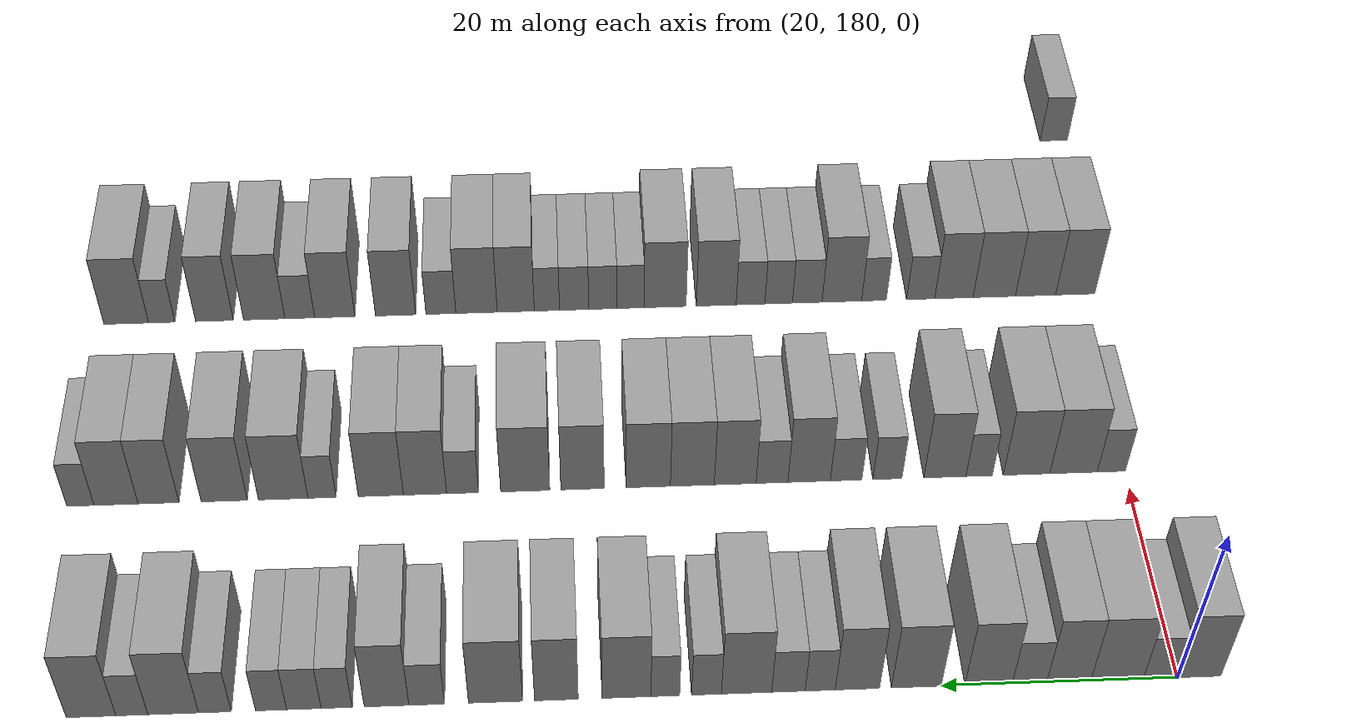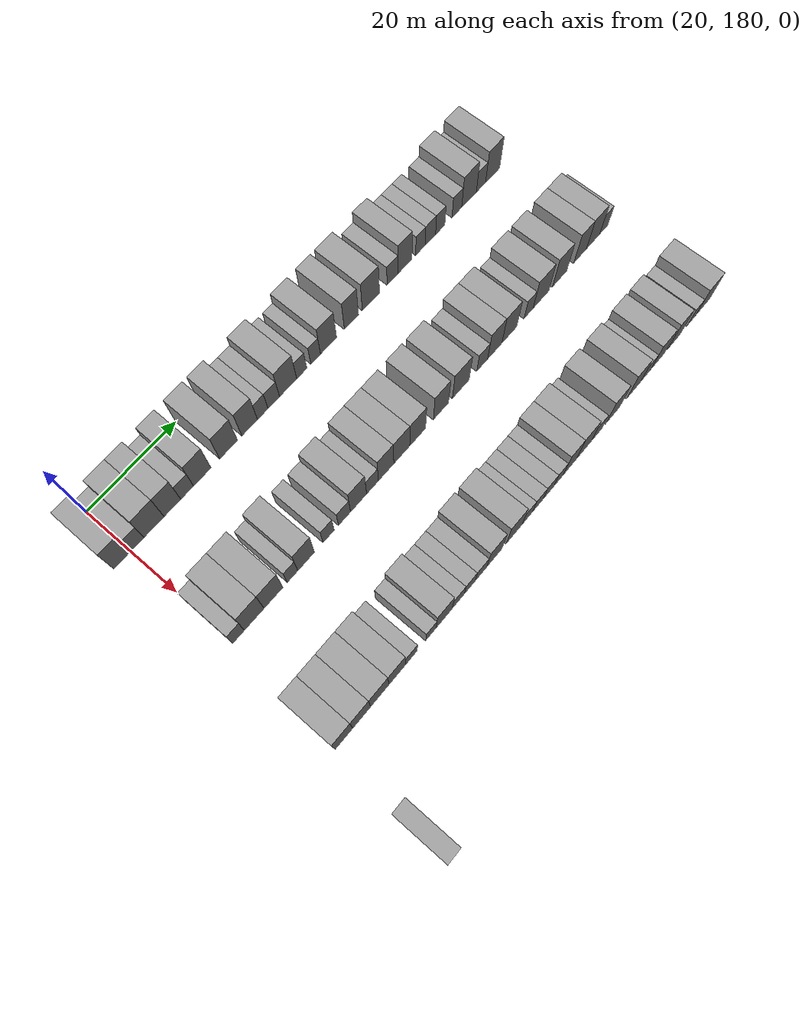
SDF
<sdf version="1.6">
 <world name="default">
  <model name="building_133">
   <static>1</static>
   <pose>25.0000 178.1787 0 0.000000 0.000000 0.000000</pose>
   <link name="link">
    <pose>0 0 4.50 0 0 0</pose>
    <collision name="collision"><geometry><box><size>10.0000 3.6230 9.0000</size></box></geometry></collision>
    <visual name="visual">
     <cast_shadows>0</cast_shadows>
     <geometry><box><size>10.0000 3.6230 9.0000</size></box></geometry>
     <material>
      <script>
       <uri>model://grey_wall/materials/scripts</uri>
       <uri>model://grey_wall/materials/textures</uri>
       <name>vrc/grey_wall</name>
      </script>
     </material>
    </visual>
   </link>
  </model>
  <model name="building_134">
   <static>1</static>
   <pose>25.0000 181.4666 0 0.000000 0.000000 0.000000</pose>
   <link name="link">
    <pose>0 0 3.00 0 0 0</pose>
    <collision name="collision"><geometry><box><size>10.0000 2.9526 6.0000</size></box></geometry></collision>
    <visual name="visual">
     <cast_shadows>0</cast_shadows>
     <geometry><box><size>10.0000 2.9526 6.0000</size></box></geometry>
     <material>
      <script>
       <uri>model://grey_wall/materials/scripts</uri>
       <uri>model://grey_wall/materials/textures</uri>
       <name>vrc/grey_wall</name>
      </script>
     </material>
    </visual>
   </link>
  </model>
  <model name="building_135">
   <static>1</static>
   <pose>25.0000 185.1688 0 0.000000 0.000000 0.000000</pose>
   <link name="link">
    <pose>0 0 4.50 0 0 0</pose>
    <collision name="collision"><geometry><box><size>10.0000 4.4518 9.0000</size></box></geometry></collision>
    <visual name="visual">
     <cast_shadows>0</cast_shadows>
     <geometry><box><size>10.0000 4.4518 9.0000</size></box></geometry>
     <material>
      <script>
       <uri>model://grey_wall/materials/scripts</uri>
       <uri>model://grey_wall/materials/textures</uri>
       <name>vrc/grey_wall</name>
      </script>
     </material>
    </visual>
   </link>
  </model>
  <model name="building_136">
   <static>1</static>
   <pose>25.0000 189.2593 0 0.000000 0.000000 0.000000</pose>
   <link name="link">
    <pose>0 0 4.50 0 0 0</pose>
    <collision name="collision"><geometry><box><size>10.0000 3.7293 9.0000</size></box></geometry></collision>
    <visual name="visual">
     <cast_shadows>0</cast_shadows>
     <geometry><box><size>10.0000 3.7293 9.0000</size></box></geometry>
     <material>
      <script>
       <uri>model://grey_wall/materials/scripts</uri>
       <uri>model://grey_wall/materials/textures</uri>
       <name>vrc/grey_wall</name>
      </script>
     </material>
    </visual>
   </link>
  </model>
  <model name="building_137">
   <static>1</static>
   <pose>25.0000 192.5766 0 0.000000 0.000000 0.000000</pose>
   <link name="link">
    <pose>0 0 3.00 0 0 0</pose>
    <collision name="collision"><geometry><box><size>10.0000 2.9053 6.0000</size></box></geometry></collision>
    <visual name="visual">
     <cast_shadows>0</cast_shadows>
     <geometry><box><size>10.0000 2.9053 6.0000</size></box></geometry>
     <material>
      <script>
       <uri>model://grey_wall/materials/scripts</uri>
       <uri>model://grey_wall/materials/textures</uri>
       <name>vrc/grey_wall</name>
      </script>
     </material>
    </visual>
   </link>
  </model>
  <model name="building_138">
   <static>1</static>
   <pose>25.0000 196.0271 0 0.000000 0.000000 0.000000</pose>
   <link name="link">
    <pose>0 0 4.50 0 0 0</pose>
    <collision name="collision"><geometry><box><size>10.0000 3.9957 9.0000</size></box></geometry></collision>
    <visual name="visual">
     <cast_shadows>0</cast_shadows>
     <geometry><box><size>10.0000 3.9957 9.0000</size></box></geometry>
     <material>
      <script>
       <uri>model://grey_wall/materials/scripts</uri>
       <uri>model://grey_wall/materials/textures</uri>
       <name>vrc/grey_wall</name>
      </script>
     </material>
    </visual>
   </link>
  </model>
  <model name="building_139">
   <static>1</static>
   <pose>25.0000 202.1184 0 0.000000 0.000000 0.000000</pose>
   <link name="link">
    <pose>0 0 4.50 0 0 0</pose>
    <collision name="collision"><geometry><box><size>10.0000 4.1868 9.0000</size></box></geometry></collision>
    <visual name="visual">
     <cast_shadows>0</cast_shadows>
     <geometry><box><size>10.0000 4.1868 9.0000</size></box></geometry>
     <material>
      <script>
       <uri>model://grey_wall/materials/scripts</uri>
       <uri>model://grey_wall/materials/textures</uri>
       <name>vrc/grey_wall</name>
      </script>
     </material>
    </visual>
   </link>
  </model>
  <model name="building_140">
   <static>1</static>
   <pose>25.0000 207.0760 0 0.000000 0.000000 0.000000</pose>
   <link name="link">
    <pose>0 0 4.50 0 0 0</pose>
    <collision name="collision"><geometry><box><size>10.0000 3.7285 9.0000</size></box></geometry></collision>
    <visual name="visual">
     <cast_shadows>0</cast_shadows>
     <geometry><box><size>10.0000 3.7285 9.0000</size></box></geometry>
     <material>
      <script>
       <uri>model://grey_wall/materials/scripts</uri>
       <uri>model://grey_wall/materials/textures</uri>
       <name>vrc/grey_wall</name>
      </script>
     </material>
    </visual>
   </link>
  </model>
  <model name="building_141">
   <static>1</static>
   <pose>25.0000 210.2023 0 0.000000 0.000000 0.000000</pose>
   <link name="link">
    <pose>0 0 3.00 0 0 0</pose>
    <collision name="collision"><geometry><box><size>10.0000 2.5241 6.0000</size></box></geometry></collision>
    <visual name="visual">
     <cast_shadows>0</cast_shadows>
     <geometry><box><size>10.0000 2.5241 6.0000</size></box></geometry>
     <material>
      <script>
       <uri>model://grey_wall/materials/scripts</uri>
       <uri>model://grey_wall/materials/textures</uri>
       <name>vrc/grey_wall</name>
      </script>
     </material>
    </visual>
   </link>
  </model>
  <model name="building_142">
   <static>1</static>
   <pose>25.0000 212.8677 0 0.000000 0.000000 0.000000</pose>
   <link name="link">
    <pose>0 0 3.00 0 0 0</pose>
    <collision name="collision"><geometry><box><size>10.0000 2.8066 6.0000</size></box></geometry></collision>
    <visual name="visual">
     <cast_shadows>0</cast_shadows>
     <geometry><box><size>10.0000 2.8066 6.0000</size></box></geometry>
     <material>
      <script>
       <uri>model://grey_wall/materials/scripts</uri>
       <uri>model://grey_wall/materials/textures</uri>
       <name>vrc/grey_wall</name>
      </script>
     </material>
    </visual>
   </link>
  </model>
  <model name="building_143">
   <static>1</static>
   <pose>25.0000 216.3794 0 0.000000 0.000000 0.000000</pose>
   <link name="link">
    <pose>0 0 4.50 0 0 0</pose>
    <collision name="collision"><geometry><box><size>10.0000 4.2169 9.0000</size></box></geometry></collision>
    <visual name="visual">
     <cast_shadows>0</cast_shadows>
     <geometry><box><size>10.0000 4.2169 9.0000</size></box></geometry>
     <material>
      <script>
       <uri>model://grey_wall/materials/scripts</uri>
       <uri>model://grey_wall/materials/textures</uri>
       <name>vrc/grey_wall</name>
      </script>
     </material>
    </visual>
   </link>
  </model>
  <model name="building_144">
   <static>1</static>
   <pose>25.0000 219.7344 0 0.000000 0.000000 0.000000</pose>
   <link name="link">
    <pose>0 0 3.00 0 0 0</pose>
    <collision name="collision"><geometry><box><size>10.0000 2.4931 6.0000</size></box></geometry></collision>
    <visual name="visual">
     <cast_shadows>0</cast_shadows>
     <geometry><box><size>10.0000 2.4931 6.0000</size></box></geometry>
     <material>
      <script>
       <uri>model://grey_wall/materials/scripts</uri>
       <uri>model://grey_wall/materials/textures</uri>
       <name>vrc/grey_wall</name>
      </script>
     </material>
    </visual>
   </link>
  </model>
  <model name="building_145">
   <static>1</static>
   <pose>25.0000 223.1831 0 0.000000 0.000000 0.000000</pose>
   <link name="link">
    <pose>0 0 3.00 0 0 0</pose>
    <collision name="collision"><geometry><box><size>10.0000 2.4042 6.0000</size></box></geometry></collision>
    <visual name="visual">
     <cast_shadows>0</cast_shadows>
     <geometry><box><size>10.0000 2.4042 6.0000</size></box></geometry>
     <material>
      <script>
       <uri>model://grey_wall/materials/scripts</uri>
       <uri>model://grey_wall/materials/textures</uri>
       <name>vrc/grey_wall</name>
      </script>
     </material>
    </visual>
   </link>
  </model>
  <model name="building_146">
   <static>1</static>
   <pose>25.0000 226.4195 0 0.000000 0.000000 0.000000</pose>
   <link name="link">
    <pose>0 0 4.50 0 0 0</pose>
    <collision name="collision"><geometry><box><size>10.0000 4.0685 9.0000</size></box></geometry></collision>
    <visual name="visual">
     <cast_shadows>0</cast_shadows>
     <geometry><box><size>10.0000 4.0685 9.0000</size></box></geometry>
     <material>
      <script>
       <uri>model://grey_wall/materials/scripts</uri>
       <uri>model://grey_wall/materials/textures</uri>
       <name>vrc/grey_wall</name>
      </script>
     </material>
    </visual>
   </link>
  </model>
  <model name="building_147">
   <static>1</static>
   <pose>25.0000 232.2710 0 0.000000 0.000000 0.000000</pose>
   <link name="link">
    <pose>0 0 4.50 0 0 0</pose>
    <collision name="collision"><geometry><box><size>10.0000 3.6345 9.0000</size></box></geometry></collision>
    <visual name="visual">
     <cast_shadows>0</cast_shadows>
     <geometry><box><size>10.0000 3.6345 9.0000</size></box></geometry>
     <material>
      <script>
       <uri>model://grey_wall/materials/scripts</uri>
       <uri>model://grey_wall/materials/textures</uri>
       <name>vrc/grey_wall</name>
      </script>
     </material>
    </visual>
   </link>
  </model>
  <model name="building_148">
   <static>1</static>
   <pose>25.0000 237.3366 0 0.000000 0.000000 0.000000</pose>
   <link name="link">
    <pose>0 0 4.50 0 0 0</pose>
    <collision name="collision"><geometry><box><size>10.0000 4.4966 9.0000</size></box></geometry></collision>
    <visual name="visual">
     <cast_shadows>0</cast_shadows>
     <geometry><box><size>10.0000 4.4966 9.0000</size></box></geometry>
     <material>
      <script>
       <uri>model://grey_wall/materials/scripts</uri>
       <uri>model://grey_wall/materials/textures</uri>
       <name>vrc/grey_wall</name>
      </script>
     </material>
    </visual>
   </link>
  </model>
  <model name="building_149">
   <static>1</static>
   <pose>25.0000 243.0659 0 0.000000 0.000000 0.000000</pose>
   <link name="link">
    <pose>0 0 3.00 0 0 0</pose>
    <collision name="collision"><geometry><box><size>10.0000 2.9619 6.0000</size></box></geometry></collision>
    <visual name="visual">
     <cast_shadows>0</cast_shadows>
     <geometry><box><size>10.0000 2.9619 6.0000</size></box></geometry>
     <material>
      <script>
       <uri>model://grey_wall/materials/scripts</uri>
       <uri>model://grey_wall/materials/textures</uri>
       <name>vrc/grey_wall</name>
      </script>
     </material>
    </visual>
   </link>
  </model>
  <model name="building_150">
   <static>1</static>
   <pose>25.0000 246.3970 0 0.000000 0.000000 0.000000</pose>
   <link name="link">
    <pose>0 0 4.50 0 0 0</pose>
    <collision name="collision"><geometry><box><size>10.0000 3.7003 9.0000</size></box></geometry></collision>
    <visual name="visual">
     <cast_shadows>0</cast_shadows>
     <geometry><box><size>10.0000 3.7003 9.0000</size></box></geometry>
     <material>
      <script>
       <uri>model://grey_wall/materials/scripts</uri>
       <uri>model://grey_wall/materials/textures</uri>
       <name>vrc/grey_wall</name>
      </script>
     </material>
    </visual>
   </link>
  </model>
  <model name="building_151">
   <static>1</static>
   <pose>25.0000 250.5377 0 0.000000 0.000000 0.000000</pose>
   <link name="link">
    <pose>0 0 3.00 0 0 0</pose>
    <collision name="collision"><geometry><box><size>10.0000 2.5811 6.0000</size></box></geometry></collision>
    <visual name="visual">
     <cast_shadows>0</cast_shadows>
     <geometry><box><size>10.0000 2.5811 6.0000</size></box></geometry>
     <material>
      <script>
       <uri>model://grey_wall/materials/scripts</uri>
       <uri>model://grey_wall/materials/textures</uri>
       <name>vrc/grey_wall</name>
      </script>
     </material>
    </visual>
   </link>
  </model>
  <model name="building_152">
   <static>1</static>
   <pose>25.0000 253.2585 0 0.000000 0.000000 0.000000</pose>
   <link name="link">
    <pose>0 0 3.00 0 0 0</pose>
    <collision name="collision"><geometry><box><size>10.0000 2.8606 6.0000</size></box></geometry></collision>
    <visual name="visual">
     <cast_shadows>0</cast_shadows>
     <geometry><box><size>10.0000 2.8606 6.0000</size></box></geometry>
     <material>
      <script>
       <uri>model://grey_wall/materials/scripts</uri>
       <uri>model://grey_wall/materials/textures</uri>
       <name>vrc/grey_wall</name>
      </script>
     </material>
    </visual>
   </link>
  </model>
  <model name="building_153">
   <static>1</static>
   <pose>25.0000 255.9757 0 0.000000 0.000000 0.000000</pose>
   <link name="link">
    <pose>0 0 3.00 0 0 0</pose>
    <collision name="collision"><geometry><box><size>10.0000 2.5737 6.0000</size></box></geometry></collision>
    <visual name="visual">
     <cast_shadows>0</cast_shadows>
     <geometry><box><size>10.0000 2.5737 6.0000</size></box></geometry>
     <material>
      <script>
       <uri>model://grey_wall/materials/scripts</uri>
       <uri>model://grey_wall/materials/textures</uri>
       <name>vrc/grey_wall</name>
      </script>
     </material>
    </visual>
   </link>
  </model>
  <model name="building_154">
   <static>1</static>
   <pose>25.0000 260.6151 0 0.000000 0.000000 0.000000</pose>
   <link name="link">
    <pose>0 0 3.00 0 0 0</pose>
    <collision name="collision"><geometry><box><size>10.0000 2.7052 6.0000</size></box></geometry></collision>
    <visual name="visual">
     <cast_shadows>0</cast_shadows>
     <geometry><box><size>10.0000 2.7052 6.0000</size></box></geometry>
     <material>
      <script>
       <uri>model://grey_wall/materials/scripts</uri>
       <uri>model://grey_wall/materials/textures</uri>
       <name>vrc/grey_wall</name>
      </script>
     </material>
    </visual>
   </link>
  </model>
  <model name="building_155">
   <static>1</static>
   <pose>25.0000 264.0558 0 0.000000 0.000000 0.000000</pose>
   <link name="link">
    <pose>0 0 4.50 0 0 0</pose>
    <collision name="collision"><geometry><box><size>10.0000 4.1763 9.0000</size></box></geometry></collision>
    <visual name="visual">
     <cast_shadows>0</cast_shadows>
     <geometry><box><size>10.0000 4.1763 9.0000</size></box></geometry>
     <material>
      <script>
       <uri>model://grey_wall/materials/scripts</uri>
       <uri>model://grey_wall/materials/textures</uri>
       <name>vrc/grey_wall</name>
      </script>
     </material>
    </visual>
   </link>
  </model>
  <model name="building_156">
   <static>1</static>
   <pose>25.0000 267.4645 0 0.000000 0.000000 0.000000</pose>
   <link name="link">
    <pose>0 0 3.00 0 0 0</pose>
    <collision name="collision"><geometry><box><size>10.0000 2.6411 6.0000</size></box></geometry></collision>
    <visual name="visual">
     <cast_shadows>0</cast_shadows>
     <geometry><box><size>10.0000 2.6411 6.0000</size></box></geometry>
     <material>
      <script>
       <uri>model://grey_wall/materials/scripts</uri>
       <uri>model://grey_wall/materials/textures</uri>
       <name>vrc/grey_wall</name>
      </script>
     </material>
    </visual>
   </link>
  </model>
  <model name="building_157">
   <static>1</static>
   <pose>25.0000 270.8281 0 0.000000 0.000000 0.000000</pose>
   <link name="link">
    <pose>0 0 4.50 0 0 0</pose>
    <collision name="collision"><geometry><box><size>10.0000 4.0861 9.0000</size></box></geometry></collision>
    <visual name="visual">
     <cast_shadows>0</cast_shadows>
     <geometry><box><size>10.0000 4.0861 9.0000</size></box></geometry>
     <material>
      <script>
       <uri>model://grey_wall/materials/scripts</uri>
       <uri>model://grey_wall/materials/textures</uri>
       <name>vrc/grey_wall</name>
      </script>
     </material>
    </visual>
   </link>
  </model>
  <model name="building_326">
   <static>1</static>
   <pose>47.0000 181.2632 0 0.000000 0.000000 0.000000</pose>
   <link name="link">
    <pose>0 0 3.00 0 0 0</pose>
    <collision name="collision"><geometry><box><size>10.0000 2.5827 6.0000</size></box></geometry></collision>
    <visual name="visual">
     <cast_shadows>0</cast_shadows>
     <geometry><box><size>10.0000 2.5827 6.0000</size></box></geometry>
     <material>
      <script>
       <uri>model://grey_wall/materials/scripts</uri>
       <uri>model://grey_wall/materials/textures</uri>
       <name>vrc/grey_wall</name>
      </script>
     </material>
    </visual>
   </link>
  </model>
  <model name="building_327">
   <static>1</static>
   <pose>47.0000 184.7302 0 0.000000 0.000000 0.000000</pose>
   <link name="link">
    <pose>0 0 4.50 0 0 0</pose>
    <collision name="collision"><geometry><box><size>10.0000 4.3514 9.0000</size></box></geometry></collision>
    <visual name="visual">
     <cast_shadows>0</cast_shadows>
     <geometry><box><size>10.0000 4.3514 9.0000</size></box></geometry>
     <material>
      <script>
       <uri>model://grey_wall/materials/scripts</uri>
       <uri>model://grey_wall/materials/textures</uri>
       <name>vrc/grey_wall</name>
      </script>
     </material>
    </visual>
   </link>
  </model>
  <model name="building_328">
   <static>1</static>
   <pose>47.0000 189.0350 0 0.000000 0.000000 0.000000</pose>
   <link name="link">
    <pose>0 0 4.50 0 0 0</pose>
    <collision name="collision"><geometry><box><size>10.0000 4.2582 9.0000</size></box></geometry></collision>
    <visual name="visual">
     <cast_shadows>0</cast_shadows>
     <geometry><box><size>10.0000 4.2582 9.0000</size></box></geometry>
     <material>
      <script>
       <uri>model://grey_wall/materials/scripts</uri>
       <uri>model://grey_wall/materials/textures</uri>
       <name>vrc/grey_wall</name>
      </script>
     </material>
    </visual>
   </link>
  </model>
  <model name="building_329">
   <static>1</static>
   <pose>47.0000 193.3698 0 0.000000 0.000000 0.000000</pose>
   <link name="link">
    <pose>0 0 3.00 0 0 0</pose>
    <collision name="collision"><geometry><box><size>10.0000 2.4115 6.0000</size></box></geometry></collision>
    <visual name="visual">
     <cast_shadows>0</cast_shadows>
     <geometry><box><size>10.0000 2.4115 6.0000</size></box></geometry>
     <material>
      <script>
       <uri>model://grey_wall/materials/scripts</uri>
       <uri>model://grey_wall/materials/textures</uri>
       <name>vrc/grey_wall</name>
      </script>
     </material>
    </visual>
   </link>
  </model>
  <model name="building_330">
   <static>1</static>
   <pose>47.0000 196.5013 0 0.000000 0.000000 0.000000</pose>
   <link name="link">
    <pose>0 0 4.50 0 0 0</pose>
    <collision name="collision"><geometry><box><size>10.0000 3.8514 9.0000</size></box></geometry></collision>
    <visual name="visual">
     <cast_shadows>0</cast_shadows>
     <geometry><box><size>10.0000 3.8514 9.0000</size></box></geometry>
     <material>
      <script>
       <uri>model://grey_wall/materials/scripts</uri>
       <uri>model://grey_wall/materials/textures</uri>
       <name>vrc/grey_wall</name>
      </script>
     </material>
    </visual>
   </link>
  </model>
  <model name="building_331">
   <static>1</static>
   <pose>47.0000 201.7512 0 0.000000 0.000000 0.000000</pose>
   <link name="link">
    <pose>0 0 3.00 0 0 0</pose>
    <collision name="collision"><geometry><box><size>10.0000 2.6484 6.0000</size></box></geometry></collision>
    <visual name="visual">
     <cast_shadows>0</cast_shadows>
     <geometry><box><size>10.0000 2.6484 6.0000</size></box></geometry>
     <material>
      <script>
       <uri>model://grey_wall/materials/scripts</uri>
       <uri>model://grey_wall/materials/textures</uri>
       <name>vrc/grey_wall</name>
      </script>
     </material>
    </visual>
   </link>
  </model>
  <model name="building_332">
   <static>1</static>
   <pose>47.0000 205.5141 0 0.000000 0.000000 0.000000</pose>
   <link name="link">
    <pose>0 0 3.00 0 0 0</pose>
    <collision name="collision"><geometry><box><size>10.0000 2.8774 6.0000</size></box></geometry></collision>
    <visual name="visual">
     <cast_shadows>0</cast_shadows>
     <geometry><box><size>10.0000 2.8774 6.0000</size></box></geometry>
     <material>
      <script>
       <uri>model://grey_wall/materials/scripts</uri>
       <uri>model://grey_wall/materials/textures</uri>
       <name>vrc/grey_wall</name>
      </script>
     </material>
    </visual>
   </link>
  </model>
  <model name="building_333">
   <static>1</static>
   <pose>47.0000 208.8849 0 0.000000 0.000000 0.000000</pose>
   <link name="link">
    <pose>0 0 4.50 0 0 0</pose>
    <collision name="collision"><geometry><box><size>10.0000 3.8641 9.0000</size></box></geometry></collision>
    <visual name="visual">
     <cast_shadows>0</cast_shadows>
     <geometry><box><size>10.0000 3.8641 9.0000</size></box></geometry>
     <material>
      <script>
       <uri>model://grey_wall/materials/scripts</uri>
       <uri>model://grey_wall/materials/textures</uri>
       <name>vrc/grey_wall</name>
      </script>
     </material>
    </visual>
   </link>
  </model>
  <model name="building_334">
   <static>1</static>
   <pose>47.0000 212.2632 0 0.000000 0.000000 0.000000</pose>
   <link name="link">
    <pose>0 0 3.00 0 0 0</pose>
    <collision name="collision"><geometry><box><size>10.0000 2.8924 6.0000</size></box></geometry></collision>
    <visual name="visual">
     <cast_shadows>0</cast_shadows>
     <geometry><box><size>10.0000 2.8924 6.0000</size></box></geometry>
     <material>
      <script>
       <uri>model://grey_wall/materials/scripts</uri>
       <uri>model://grey_wall/materials/textures</uri>
       <name>vrc/grey_wall</name>
      </script>
     </material>
    </visual>
   </link>
  </model>
  <model name="building_335">
   <static>1</static>
   <pose>47.0000 215.6080 0 0.000000 0.000000 0.000000</pose>
   <link name="link">
    <pose>0 0 4.50 0 0 0</pose>
    <collision name="collision"><geometry><box><size>10.0000 3.7972 9.0000</size></box></geometry></collision>
    <visual name="visual">
     <cast_shadows>0</cast_shadows>
     <geometry><box><size>10.0000 3.7972 9.0000</size></box></geometry>
     <material>
      <script>
       <uri>model://grey_wall/materials/scripts</uri>
       <uri>model://grey_wall/materials/textures</uri>
       <name>vrc/grey_wall</name>
      </script>
     </material>
    </visual>
   </link>
  </model>
  <model name="building_336">
   <static>1</static>
   <pose>47.0000 219.4972 0 0.000000 0.000000 0.000000</pose>
   <link name="link">
    <pose>0 0 4.50 0 0 0</pose>
    <collision name="collision"><geometry><box><size>10.0000 3.9813 9.0000</size></box></geometry></collision>
    <visual name="visual">
     <cast_shadows>0</cast_shadows>
     <geometry><box><size>10.0000 3.9813 9.0000</size></box></geometry>
     <material>
      <script>
       <uri>model://grey_wall/materials/scripts</uri>
       <uri>model://grey_wall/materials/textures</uri>
       <name>vrc/grey_wall</name>
      </script>
     </material>
    </visual>
   </link>
  </model>
  <model name="building_337">
   <static>1</static>
   <pose>47.0000 223.4899 0 0.000000 0.000000 0.000000</pose>
   <link name="link">
    <pose>0 0 4.50 0 0 0</pose>
    <collision name="collision"><geometry><box><size>10.0000 4.0040 9.0000</size></box></geometry></collision>
    <visual name="visual">
     <cast_shadows>0</cast_shadows>
     <geometry><box><size>10.0000 4.0040 9.0000</size></box></geometry>
     <material>
      <script>
       <uri>model://grey_wall/materials/scripts</uri>
       <uri>model://grey_wall/materials/textures</uri>
       <name>vrc/grey_wall</name>
      </script>
     </material>
    </visual>
   </link>
  </model>
  <model name="building_338">
   <static>1</static>
   <pose>47.0000 229.4475 0 0.000000 0.000000 0.000000</pose>
   <link name="link">
    <pose>0 0 4.50 0 0 0</pose>
    <collision name="collision"><geometry><box><size>10.0000 3.9113 9.0000</size></box></geometry></collision>
    <visual name="visual">
     <cast_shadows>0</cast_shadows>
     <geometry><box><size>10.0000 3.9113 9.0000</size></box></geometry>
     <material>
      <script>
       <uri>model://grey_wall/materials/scripts</uri>
       <uri>model://grey_wall/materials/textures</uri>
       <name>vrc/grey_wall</name>
      </script>
     </material>
    </visual>
   </link>
  </model>
  <model name="building_339">
   <static>1</static>
   <pose>47.0000 234.6191 0 0.000000 0.000000 0.000000</pose>
   <link name="link">
    <pose>0 0 4.50 0 0 0</pose>
    <collision name="collision"><geometry><box><size>10.0000 4.4318 9.0000</size></box></geometry></collision>
    <visual name="visual">
     <cast_shadows>0</cast_shadows>
     <geometry><box><size>10.0000 4.4318 9.0000</size></box></geometry>
     <material>
      <script>
       <uri>model://grey_wall/materials/scripts</uri>
       <uri>model://grey_wall/materials/textures</uri>
       <name>vrc/grey_wall</name>
      </script>
     </material>
    </visual>
   </link>
  </model>
  <model name="building_340">
   <static>1</static>
   <pose>47.0000 240.2762 0 0.000000 0.000000 0.000000</pose>
   <link name="link">
    <pose>0 0 3.00 0 0 0</pose>
    <collision name="collision"><geometry><box><size>10.0000 2.8824 6.0000</size></box></geometry></collision>
    <visual name="visual">
     <cast_shadows>0</cast_shadows>
     <geometry><box><size>10.0000 2.8824 6.0000</size></box></geometry>
     <material>
      <script>
       <uri>model://grey_wall/materials/scripts</uri>
       <uri>model://grey_wall/materials/textures</uri>
       <name>vrc/grey_wall</name>
      </script>
     </material>
    </visual>
   </link>
  </model>
  <model name="building_341">
   <static>1</static>
   <pose>47.0000 243.6648 0 0.000000 0.000000 0.000000</pose>
   <link name="link">
    <pose>0 0 4.50 0 0 0</pose>
    <collision name="collision"><geometry><box><size>10.0000 3.8947 9.0000</size></box></geometry></collision>
    <visual name="visual">
     <cast_shadows>0</cast_shadows>
     <geometry><box><size>10.0000 3.8947 9.0000</size></box></geometry>
     <material>
      <script>
       <uri>model://grey_wall/materials/scripts</uri>
       <uri>model://grey_wall/materials/textures</uri>
       <name>vrc/grey_wall</name>
      </script>
     </material>
    </visual>
   </link>
  </model>
  <model name="building_342">
   <static>1</static>
   <pose>47.0000 247.6403 0 0.000000 0.000000 0.000000</pose>
   <link name="link">
    <pose>0 0 4.50 0 0 0</pose>
    <collision name="collision"><geometry><box><size>10.0000 4.0564 9.0000</size></box></geometry></collision>
    <visual name="visual">
     <cast_shadows>0</cast_shadows>
     <geometry><box><size>10.0000 4.0564 9.0000</size></box></geometry>
     <material>
      <script>
       <uri>model://grey_wall/materials/scripts</uri>
       <uri>model://grey_wall/materials/textures</uri>
       <name>vrc/grey_wall</name>
      </script>
     </material>
    </visual>
   </link>
  </model>
  <model name="building_343">
   <static>1</static>
   <pose>47.0000 252.9308 0 0.000000 0.000000 0.000000</pose>
   <link name="link">
    <pose>0 0 3.00 0 0 0</pose>
    <collision name="collision"><geometry><box><size>10.0000 2.5245 6.0000</size></box></geometry></collision>
    <visual name="visual">
     <cast_shadows>0</cast_shadows>
     <geometry><box><size>10.0000 2.5245 6.0000</size></box></geometry>
     <material>
      <script>
       <uri>model://grey_wall/materials/scripts</uri>
       <uri>model://grey_wall/materials/textures</uri>
       <name>vrc/grey_wall</name>
      </script>
     </material>
    </visual>
   </link>
  </model>
  <model name="building_344">
   <static>1</static>
   <pose>47.0000 256.4169 0 0.000000 0.000000 0.000000</pose>
   <link name="link">
    <pose>0 0 4.50 0 0 0</pose>
    <collision name="collision"><geometry><box><size>10.0000 4.4477 9.0000</size></box></geometry></collision>
    <visual name="visual">
     <cast_shadows>0</cast_shadows>
     <geometry><box><size>10.0000 4.4477 9.0000</size></box></geometry>
     <material>
      <script>
       <uri>model://grey_wall/materials/scripts</uri>
       <uri>model://grey_wall/materials/textures</uri>
       <name>vrc/grey_wall</name>
      </script>
     </material>
    </visual>
   </link>
  </model>
  <model name="building_345">
   <static>1</static>
   <pose>47.0000 261.7018 0 0.000000 0.000000 0.000000</pose>
   <link name="link">
    <pose>0 0 4.50 0 0 0</pose>
    <collision name="collision"><geometry><box><size>10.0000 4.1223 9.0000</size></box></geometry></collision>
    <visual name="visual">
     <cast_shadows>0</cast_shadows>
     <geometry><box><size>10.0000 4.1223 9.0000</size></box></geometry>
     <material>
      <script>
       <uri>model://grey_wall/materials/scripts</uri>
       <uri>model://grey_wall/materials/textures</uri>
       <name>vrc/grey_wall</name>
      </script>
     </material>
    </visual>
   </link>
  </model>
  <model name="building_346">
   <static>1</static>
   <pose>47.0000 267.5933 0 0.000000 0.000000 0.000000</pose>
   <link name="link">
    <pose>0 0 4.50 0 0 0</pose>
    <collision name="collision"><geometry><box><size>10.0000 3.6606 9.0000</size></box></geometry></collision>
    <visual name="visual">
     <cast_shadows>0</cast_shadows>
     <geometry><box><size>10.0000 3.6606 9.0000</size></box></geometry>
     <material>
      <script>
       <uri>model://grey_wall/materials/scripts</uri>
       <uri>model://grey_wall/materials/textures</uri>
       <name>vrc/grey_wall</name>
      </script>
     </material>
    </visual>
   </link>
  </model>
  <model name="building_347">
   <static>1</static>
   <pose>47.0000 271.3919 0 0.000000 0.000000 0.000000</pose>
   <link name="link">
    <pose>0 0 4.50 0 0 0</pose>
    <collision name="collision"><geometry><box><size>10.0000 3.9366 9.0000</size></box></geometry></collision>
    <visual name="visual">
     <cast_shadows>0</cast_shadows>
     <geometry><box><size>10.0000 3.9366 9.0000</size></box></geometry>
     <material>
      <script>
       <uri>model://grey_wall/materials/scripts</uri>
       <uri>model://grey_wall/materials/textures</uri>
       <name>vrc/grey_wall</name>
      </script>
     </material>
    </visual>
   </link>
  </model>
  <model name="building_348">
   <static>1</static>
   <pose>47.0000 274.5755 0 0.000000 0.000000 0.000000</pose>
   <link name="link">
    <pose>0 0 3.00 0 0 0</pose>
    <collision name="collision"><geometry><box><size>10.0000 2.4307 6.0000</size></box></geometry></collision>
    <visual name="visual">
     <cast_shadows>0</cast_shadows>
     <geometry><box><size>10.0000 2.4307 6.0000</size></box></geometry>
     <material>
      <script>
       <uri>model://grey_wall/materials/scripts</uri>
       <uri>model://grey_wall/materials/textures</uri>
       <name>vrc/grey_wall</name>
      </script>
     </material>
    </visual>
   </link>
  </model>
  <model name="building_524">
   <static>1</static>
   <pose>69.0000 180.4365 0 0.000000 0.000000 0.000000</pose>
   <link name="link">
    <pose>0 0 4.50 0 0 0</pose>
    <collision name="collision"><geometry><box><size>10.0000 3.8685 9.0000</size></box></geometry></collision>
    <visual name="visual">
     <cast_shadows>0</cast_shadows>
     <geometry><box><size>10.0000 3.8685 9.0000</size></box></geometry>
     <material>
      <script>
       <uri>model://grey_wall/materials/scripts</uri>
       <uri>model://grey_wall/materials/textures</uri>
       <name>vrc/grey_wall</name>
      </script>
     </material>
    </visual>
   </link>
  </model>
  <model name="building_525">
   <static>1</static>
   <pose>69.0000 184.3550 0 0.000000 0.000000 0.000000</pose>
   <link name="link">
    <pose>0 0 4.50 0 0 0</pose>
    <collision name="collision"><geometry><box><size>10.0000 3.9685 9.0000</size></box></geometry></collision>
    <visual name="visual">
     <cast_shadows>0</cast_shadows>
     <geometry><box><size>10.0000 3.9685 9.0000</size></box></geometry>
     <material>
      <script>
       <uri>model://grey_wall/materials/scripts</uri>
       <uri>model://grey_wall/materials/textures</uri>
       <name>vrc/grey_wall</name>
      </script>
     </material>
    </visual>
   </link>
  </model>
  <model name="building_526">
   <static>1</static>
   <pose>69.0000 188.4252 0 0.000000 0.000000 0.000000</pose>
   <link name="link">
    <pose>0 0 4.50 0 0 0</pose>
    <collision name="collision"><geometry><box><size>10.0000 4.1720 9.0000</size></box></geometry></collision>
    <visual name="visual">
     <cast_shadows>0</cast_shadows>
     <geometry><box><size>10.0000 4.1720 9.0000</size></box></geometry>
     <material>
      <script>
       <uri>model://grey_wall/materials/scripts</uri>
       <uri>model://grey_wall/materials/textures</uri>
       <name>vrc/grey_wall</name>
      </script>
     </material>
    </visual>
   </link>
  </model>
  <model name="building_527">
   <static>1</static>
   <pose>69.0000 192.4057 0 0.000000 0.000000 0.000000</pose>
   <link name="link">
    <pose>0 0 4.50 0 0 0</pose>
    <collision name="collision"><geometry><box><size>10.0000 3.7891 9.0000</size></box></geometry></collision>
    <visual name="visual">
     <cast_shadows>0</cast_shadows>
     <geometry><box><size>10.0000 3.7891 9.0000</size></box></geometry>
     <material>
      <script>
       <uri>model://grey_wall/materials/scripts</uri>
       <uri>model://grey_wall/materials/textures</uri>
       <name>vrc/grey_wall</name>
      </script>
     </material>
    </visual>
   </link>
  </model>
  <model name="building_528">
   <static>1</static>
   <pose>69.0000 195.6791 0 0.000000 0.000000 0.000000</pose>
   <link name="link">
    <pose>0 0 3.00 0 0 0</pose>
    <collision name="collision"><geometry><box><size>10.0000 2.7577 6.0000</size></box></geometry></collision>
    <visual name="visual">
     <cast_shadows>0</cast_shadows>
     <geometry><box><size>10.0000 2.7577 6.0000</size></box></geometry>
     <material>
      <script>
       <uri>model://grey_wall/materials/scripts</uri>
       <uri>model://grey_wall/materials/textures</uri>
       <name>vrc/grey_wall</name>
      </script>
     </material>
    </visual>
   </link>
  </model>
  <model name="building_529">
   <static>1</static>
   <pose>69.0000 200.2730 0 0.000000 0.000000 0.000000</pose>
   <link name="link">
    <pose>0 0 3.00 0 0 0</pose>
    <collision name="collision"><geometry><box><size>10.0000 2.4300 6.0000</size></box></geometry></collision>
    <visual name="visual">
     <cast_shadows>0</cast_shadows>
     <geometry><box><size>10.0000 2.4300 6.0000</size></box></geometry>
     <material>
      <script>
       <uri>model://grey_wall/materials/scripts</uri>
       <uri>model://grey_wall/materials/textures</uri>
       <name>vrc/grey_wall</name>
      </script>
     </material>
    </visual>
   </link>
  </model>
  <model name="building_530">
   <static>1</static>
   <pose>69.0000 203.4277 0 0.000000 0.000000 0.000000</pose>
   <link name="link">
    <pose>0 0 4.50 0 0 0</pose>
    <collision name="collision"><geometry><box><size>10.0000 3.8795 9.0000</size></box></geometry></collision>
    <visual name="visual">
     <cast_shadows>0</cast_shadows>
     <geometry><box><size>10.0000 3.8795 9.0000</size></box></geometry>
     <material>
      <script>
       <uri>model://grey_wall/materials/scripts</uri>
       <uri>model://grey_wall/materials/textures</uri>
       <name>vrc/grey_wall</name>
      </script>
     </material>
    </visual>
   </link>
  </model>
  <model name="building_531">
   <static>1</static>
   <pose>69.0000 206.8254 0 0.000000 0.000000 0.000000</pose>
   <link name="link">
    <pose>0 0 3.00 0 0 0</pose>
    <collision name="collision"><geometry><box><size>10.0000 2.9157 6.0000</size></box></geometry></collision>
    <visual name="visual">
     <cast_shadows>0</cast_shadows>
     <geometry><box><size>10.0000 2.9157 6.0000</size></box></geometry>
     <material>
      <script>
       <uri>model://grey_wall/materials/scripts</uri>
       <uri>model://grey_wall/materials/textures</uri>
       <name>vrc/grey_wall</name>
      </script>
     </material>
    </visual>
   </link>
  </model>
  <model name="building_532">
   <static>1</static>
   <pose>69.0000 209.6304 0 0.000000 0.000000 0.000000</pose>
   <link name="link">
    <pose>0 0 3.00 0 0 0</pose>
    <collision name="collision"><geometry><box><size>10.0000 2.6943 6.0000</size></box></geometry></collision>
    <visual name="visual">
     <cast_shadows>0</cast_shadows>
     <geometry><box><size>10.0000 2.6943 6.0000</size></box></geometry>
     <material>
      <script>
       <uri>model://grey_wall/materials/scripts</uri>
       <uri>model://grey_wall/materials/textures</uri>
       <name>vrc/grey_wall</name>
      </script>
     </material>
    </visual>
   </link>
  </model>
  <model name="building_533">
   <static>1</static>
   <pose>69.0000 212.3847 0 0.000000 0.000000 0.000000</pose>
   <link name="link">
    <pose>0 0 3.00 0 0 0</pose>
    <collision name="collision"><geometry><box><size>10.0000 2.8143 6.0000</size></box></geometry></collision>
    <visual name="visual">
     <cast_shadows>0</cast_shadows>
     <geometry><box><size>10.0000 2.8143 6.0000</size></box></geometry>
     <material>
      <script>
       <uri>model://grey_wall/materials/scripts</uri>
       <uri>model://grey_wall/materials/textures</uri>
       <name>vrc/grey_wall</name>
      </script>
     </material>
    </visual>
   </link>
  </model>
  <model name="building_534">
   <static>1</static>
   <pose>69.0000 215.7409 0 0.000000 0.000000 0.000000</pose>
   <link name="link">
    <pose>0 0 4.50 0 0 0</pose>
    <collision name="collision"><geometry><box><size>10.0000 3.8981 9.0000</size></box></geometry></collision>
    <visual name="visual">
     <cast_shadows>0</cast_shadows>
     <geometry><box><size>10.0000 3.8981 9.0000</size></box></geometry>
     <material>
      <script>
       <uri>model://grey_wall/materials/scripts</uri>
       <uri>model://grey_wall/materials/textures</uri>
       <name>vrc/grey_wall</name>
      </script>
     </material>
    </visual>
   </link>
  </model>
  <model name="building_535">
   <static>1</static>
   <pose>69.0000 220.7416 0 0.000000 0.000000 0.000000</pose>
   <link name="link">
    <pose>0 0 4.50 0 0 0</pose>
    <collision name="collision"><geometry><box><size>10.0000 4.1033 9.0000</size></box></geometry></collision>
    <visual name="visual">
     <cast_shadows>0</cast_shadows>
     <geometry><box><size>10.0000 4.1033 9.0000</size></box></geometry>
     <material>
      <script>
       <uri>model://grey_wall/materials/scripts</uri>
       <uri>model://grey_wall/materials/textures</uri>
       <name>vrc/grey_wall</name>
      </script>
     </material>
    </visual>
   </link>
  </model>
  <model name="building_536">
   <static>1</static>
   <pose>69.0000 224.1173 0 0.000000 0.000000 0.000000</pose>
   <link name="link">
    <pose>0 0 3.00 0 0 0</pose>
    <collision name="collision"><geometry><box><size>10.0000 2.6482 6.0000</size></box></geometry></collision>
    <visual name="visual">
     <cast_shadows>0</cast_shadows>
     <geometry><box><size>10.0000 2.6482 6.0000</size></box></geometry>
     <material>
      <script>
       <uri>model://grey_wall/materials/scripts</uri>
       <uri>model://grey_wall/materials/textures</uri>
       <name>vrc/grey_wall</name>
      </script>
     </material>
    </visual>
   </link>
  </model>
  <model name="building_537">
   <static>1</static>
   <pose>69.0000 226.8203 0 0.000000 0.000000 0.000000</pose>
   <link name="link">
    <pose>0 0 3.00 0 0 0</pose>
    <collision name="collision"><geometry><box><size>10.0000 2.7578 6.0000</size></box></geometry></collision>
    <visual name="visual">
     <cast_shadows>0</cast_shadows>
     <geometry><box><size>10.0000 2.7578 6.0000</size></box></geometry>
     <material>
      <script>
       <uri>model://grey_wall/materials/scripts</uri>
       <uri>model://grey_wall/materials/textures</uri>
       <name>vrc/grey_wall</name>
      </script>
     </material>
    </visual>
   </link>
  </model>
  <model name="building_538">
   <static>1</static>
   <pose>69.0000 229.6187 0 0.000000 0.000000 0.000000</pose>
   <link name="link">
    <pose>0 0 3.00 0 0 0</pose>
    <collision name="collision"><geometry><box><size>10.0000 2.8392 6.0000</size></box></geometry></collision>
    <visual name="visual">
     <cast_shadows>0</cast_shadows>
     <geometry><box><size>10.0000 2.8392 6.0000</size></box></geometry>
     <material>
      <script>
       <uri>model://grey_wall/materials/scripts</uri>
       <uri>model://grey_wall/materials/textures</uri>
       <name>vrc/grey_wall</name>
      </script>
     </material>
    </visual>
   </link>
  </model>
  <model name="building_539">
   <static>1</static>
   <pose>69.0000 232.2647 0 0.000000 0.000000 0.000000</pose>
   <link name="link">
    <pose>0 0 3.00 0 0 0</pose>
    <collision name="collision"><geometry><box><size>10.0000 2.4528 6.0000</size></box></geometry></collision>
    <visual name="visual">
     <cast_shadows>0</cast_shadows>
     <geometry><box><size>10.0000 2.4528 6.0000</size></box></geometry>
     <material>
      <script>
       <uri>model://grey_wall/materials/scripts</uri>
       <uri>model://grey_wall/materials/textures</uri>
       <name>vrc/grey_wall</name>
      </script>
     </material>
    </visual>
   </link>
  </model>
  <model name="building_540">
   <static>1</static>
   <pose>69.0000 235.2964 0 0.000000 0.000000 0.000000</pose>
   <link name="link">
    <pose>0 0 4.50 0 0 0</pose>
    <collision name="collision"><geometry><box><size>10.0000 3.6105 9.0000</size></box></geometry></collision>
    <visual name="visual">
     <cast_shadows>0</cast_shadows>
     <geometry><box><size>10.0000 3.6105 9.0000</size></box></geometry>
     <material>
      <script>
       <uri>model://grey_wall/materials/scripts</uri>
       <uri>model://grey_wall/materials/textures</uri>
       <name>vrc/grey_wall</name>
      </script>
     </material>
    </visual>
   </link>
  </model>
  <model name="building_541">
   <static>1</static>
   <pose>69.0000 239.1120 0 0.000000 0.000000 0.000000</pose>
   <link name="link">
    <pose>0 0 4.50 0 0 0</pose>
    <collision name="collision"><geometry><box><size>10.0000 4.0207 9.0000</size></box></geometry></collision>
    <visual name="visual">
     <cast_shadows>0</cast_shadows>
     <geometry><box><size>10.0000 4.0207 9.0000</size></box></geometry>
     <material>
      <script>
       <uri>model://grey_wall/materials/scripts</uri>
       <uri>model://grey_wall/materials/textures</uri>
       <name>vrc/grey_wall</name>
      </script>
     </material>
    </visual>
   </link>
  </model>
  <model name="building_542">
   <static>1</static>
   <pose>69.0000 242.5725 0 0.000000 0.000000 0.000000</pose>
   <link name="link">
    <pose>0 0 3.00 0 0 0</pose>
    <collision name="collision"><geometry><box><size>10.0000 2.9003 6.0000</size></box></geometry></collision>
    <visual name="visual">
     <cast_shadows>0</cast_shadows>
     <geometry><box><size>10.0000 2.9003 6.0000</size></box></geometry>
     <material>
      <script>
       <uri>model://grey_wall/materials/scripts</uri>
       <uri>model://grey_wall/materials/textures</uri>
       <name>vrc/grey_wall</name>
      </script>
     </material>
    </visual>
   </link>
  </model>
  <model name="building_543">
   <static>1</static>
   <pose>69.0000 246.9730 0 0.000000 0.000000 0.000000</pose>
   <link name="link">
    <pose>0 0 4.50 0 0 0</pose>
    <collision name="collision"><geometry><box><size>10.0000 3.9008 9.0000</size></box></geometry></collision>
    <visual name="visual">
     <cast_shadows>0</cast_shadows>
     <geometry><box><size>10.0000 3.9008 9.0000</size></box></geometry>
     <material>
      <script>
       <uri>model://grey_wall/materials/scripts</uri>
       <uri>model://grey_wall/materials/textures</uri>
       <name>vrc/grey_wall</name>
      </script>
     </material>
    </visual>
   </link>
  </model>
  <model name="building_544">
   <static>1</static>
   <pose>69.0000 252.8753 0 0.000000 0.000000 0.000000</pose>
   <link name="link">
    <pose>0 0 4.50 0 0 0</pose>
    <collision name="collision"><geometry><box><size>10.0000 3.9038 9.0000</size></box></geometry></collision>
    <visual name="visual">
     <cast_shadows>0</cast_shadows>
     <geometry><box><size>10.0000 3.9038 9.0000</size></box></geometry>
     <material>
      <script>
       <uri>model://grey_wall/materials/scripts</uri>
       <uri>model://grey_wall/materials/textures</uri>
       <name>vrc/grey_wall</name>
      </script>
     </material>
    </visual>
   </link>
  </model>
  <model name="building_545">
   <static>1</static>
   <pose>69.0000 256.2695 0 0.000000 0.000000 0.000000</pose>
   <link name="link">
    <pose>0 0 3.00 0 0 0</pose>
    <collision name="collision"><geometry><box><size>10.0000 2.8844 6.0000</size></box></geometry></collision>
    <visual name="visual">
     <cast_shadows>0</cast_shadows>
     <geometry><box><size>10.0000 2.8844 6.0000</size></box></geometry>
     <material>
      <script>
       <uri>model://grey_wall/materials/scripts</uri>
       <uri>model://grey_wall/materials/textures</uri>
       <name>vrc/grey_wall</name>
      </script>
     </material>
    </visual>
   </link>
  </model>
  <model name="building_546">
   <static>1</static>
   <pose>69.0000 259.7022 0 0.000000 0.000000 0.000000</pose>
   <link name="link">
    <pose>0 0 4.50 0 0 0</pose>
    <collision name="collision"><geometry><box><size>10.0000 3.9810 9.0000</size></box></geometry></collision>
    <visual name="visual">
     <cast_shadows>0</cast_shadows>
     <geometry><box><size>10.0000 3.9810 9.0000</size></box></geometry>
     <material>
      <script>
       <uri>model://grey_wall/materials/scripts</uri>
       <uri>model://grey_wall/materials/textures</uri>
       <name>vrc/grey_wall</name>
      </script>
     </material>
    </visual>
   </link>
  </model>
  <model name="building_547">
   <static>1</static>
   <pose>69.0000 264.5114 0 0.000000 0.000000 0.000000</pose>
   <link name="link">
    <pose>0 0 4.50 0 0 0</pose>
    <collision name="collision"><geometry><box><size>10.0000 3.6374 9.0000</size></box></geometry></collision>
    <visual name="visual">
     <cast_shadows>0</cast_shadows>
     <geometry><box><size>10.0000 3.6374 9.0000</size></box></geometry>
     <material>
      <script>
       <uri>model://grey_wall/materials/scripts</uri>
       <uri>model://grey_wall/materials/textures</uri>
       <name>vrc/grey_wall</name>
      </script>
     </material>
    </visual>
   </link>
  </model>
  <model name="building_548">
   <static>1</static>
   <pose>69.0000 269.5938 0 0.000000 0.000000 0.000000</pose>
   <link name="link">
    <pose>0 0 3.00 0 0 0</pose>
    <collision name="collision"><geometry><box><size>10.0000 2.5275 6.0000</size></box></geometry></collision>
    <visual name="visual">
     <cast_shadows>0</cast_shadows>
     <geometry><box><size>10.0000 2.5275 6.0000</size></box></geometry>
     <material>
      <script>
       <uri>model://grey_wall/materials/scripts</uri>
       <uri>model://grey_wall/materials/textures</uri>
       <name>vrc/grey_wall</name>
      </script>
     </material>
    </visual>
   </link>
  </model>
  <model name="building_549">
   <static>1</static>
   <pose>69.0000 273.0113 0 0.000000 0.000000 0.000000</pose>
   <link name="link">
    <pose>0 0 4.50 0 0 0</pose>
    <collision name="collision"><geometry><box><size>10.0000 4.3076 9.0000</size></box></geometry></collision>
    <visual name="visual">
     <cast_shadows>0</cast_shadows>
     <geometry><box><size>10.0000 4.3076 9.0000</size></box></geometry>
     <material>
      <script>
       <uri>model://grey_wall/materials/scripts</uri>
       <uri>model://grey_wall/materials/textures</uri>
       <name>vrc/grey_wall</name>
      </script>
     </material>
    </visual>
   </link>
  </model>
  <model name="building_700">
   <static>1</static>
   <pose>91.0000 178.5679 0 0.000000 0.000000 0.000000</pose>
   <link name="link">
    <pose>0 0 3.00 0 0 0</pose>
    <collision name="collision"><geometry><box><size>10.0000 2.8789 6.0000</size></box></geometry></collision>
    <visual name="visual">
     <cast_shadows>0</cast_shadows>
     <geometry><box><size>10.0000 2.8789 6.0000</size></box></geometry>
     <material>
      <script>
       <uri>model://grey_wall/materials/scripts</uri>
       <uri>model://grey_wall/materials/textures</uri>
       <name>vrc/grey_wall</name>
      </script>
     </material>
    </visual>
   </link>
  </model>
 </world>
</sdf>
